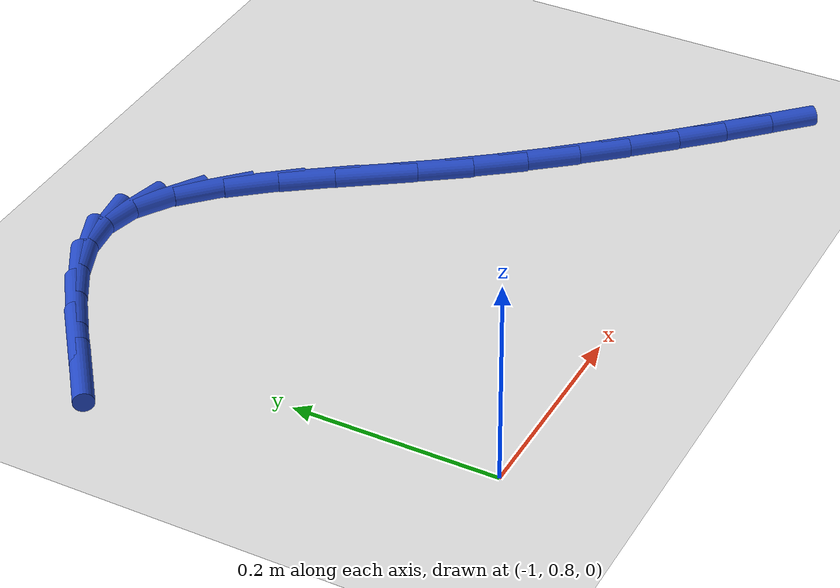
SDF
<sdf version="1.6">
 <world name="default">
  <model name="ground_plane">
   <static>1</static>
   <link name="link">
    <collision name="collision">
     <geometry><plane><normal>0 0 1</normal><size>100 100</size></plane></geometry>
     <surface><friction><ode><mu>100</mu><mu2>50</mu2></ode></friction></surface>
    </collision>
    <visual name="visual">
     <cast_shadows>0</cast_shadows>
     <geometry><plane><normal>0 0 1</normal><size>100 100</size></plane></geometry>
     <material>
      <script><uri>file://media/materials/scripts/gazebo.material</uri><name>Gazebo/WhiteGlow</name></script>
     </material>
    </visual>
   </link>
  </model>
  <model name="line">
   <link name="link_20">
    <pose>-0.40143416023165135 0.7904790253872984 0.01 0 1.57 -0.7918048773027135</pose>
    <collision name="collision">
     <geometry><cylinder><radius>0.01</radius><length>0.08</length></cylinder></geometry>
    </collision>
    <visual name="visual">
     <material>
      <script><name>Gazebo/Blue</name><uri>file://media/materials/scripts/gazebo.material</uri></script>
     </material>
     <geometry><cylinder><radius>0.01</radius><length>0.08</length></cylinder></geometry>
    </visual>
   </link>
   <link name="link_21">
    <pose>-0.4351158887530221 0.8245951211150587 0.01 0 1.57 -0.8018211122325916</pose>
    <collision name="collision">
     <geometry><cylinder><radius>0.01</radius><length>0.08</length></cylinder></geometry>
    </collision>
    <visual name="visual">
     <material>
      <script><name>Gazebo/Blue</name><uri>file://media/materials/scripts/gazebo.material</uri></script>
     </material>
     <geometry><cylinder><radius>0.01</radius><length>0.08</length></cylinder></geometry>
    </visual>
   </link>
   <link name="link_22">
    <pose>-0.46897555789436235 0.8595856146228088 0.01 0 1.57 -0.8169596382863726</pose>
    <collision name="collision">
     <geometry><cylinder><radius>0.01</radius><length>0.08</length></cylinder></geometry>
    </collision>
    <visual name="visual">
     <material>
      <script><name>Gazebo/Blue</name><uri>file://media/materials/scripts/gazebo.material</uri></script>
     </material>
     <geometry><cylinder><radius>0.01</radius><length>0.08</length></cylinder></geometry>
    </visual>
   </link>
   <link name="link_23">
    <pose>-0.5028500998125415 0.8956688609498233 0.01 0 1.57 -0.8369269062319549</pose>
    <collision name="collision">
     <geometry><cylinder><radius>0.01</radius><length>0.08</length></cylinder></geometry>
    </collision>
    <visual name="visual">
     <material>
      <script><name>Gazebo/Blue</name><uri>file://media/materials/scripts/gazebo.material</uri></script>
     </material>
     <geometry><cylinder><radius>0.01</radius><length>0.08</length></cylinder></geometry>
    </visual>
   </link>
   <link name="link_24">
    <pose>-0.5365764466644282 0.9330632151353768 0.01 0 1.57 -0.861403209362557</pose>
    <collision name="collision">
     <geometry><cylinder><radius>0.01</radius><length>0.08</length></cylinder></geometry>
    </collision>
    <visual name="visual">
     <material>
      <script><name>Gazebo/Blue</name><uri>file://media/materials/scripts/gazebo.material</uri></script>
     </material>
     <geometry><cylinder><radius>0.01</radius><length>0.08</length></cylinder></geometry>
    </visual>
   </link>
   <link name="link_25">
    <pose>-0.5699915306068915 0.9719870322187436 0.01 0 1.57 -0.8900360650598279</pose>
    <collision name="collision">
     <geometry><cylinder><radius>0.01</radius><length>0.08</length></cylinder></geometry>
    </collision>
    <visual name="visual">
     <material>
      <script><name>Gazebo/Blue</name><uri>file://media/materials/scripts/gazebo.material</uri></script>
     </material>
     <geometry><cylinder><radius>0.01</radius><length>0.08</length></cylinder></geometry>
    </visual>
   </link>
   <link name="link_26">
    <pose>-0.6029322837968005 1.0126586672391982 0.01 0 1.57 -0.9224347609188671</pose>
    <collision name="collision">
     <geometry><cylinder><radius>0.01</radius><length>0.08</length></cylinder></geometry>
    </collision>
    <visual name="visual">
     <material>
      <script><name>Gazebo/Blue</name><uri>file://media/materials/scripts/gazebo.material</uri></script>
     </material>
     <geometry><cylinder><radius>0.01</radius><length>0.08</length></cylinder></geometry>
    </visual>
   </link>
   <link name="link_27">
    <pose>-0.6352356383910243 1.0552964752360157 0.01 0 1.57 -0.9564537085518491</pose>
    <collision name="collision">
     <geometry><cylinder><radius>0.01</radius><length>0.08</length></cylinder></geometry>
    </collision>
    <visual name="visual">
     <material>
      <script><name>Gazebo/Blue</name><uri>file://media/materials/scripts/gazebo.material</uri></script>
     </material>
     <geometry><cylinder><radius>0.01</radius><length>0.08</length></cylinder></geometry>
    </visual>
   </link>
   <link name="link_28">
    <pose>-0.6667643967040539 1.0999925992749575 0.01 0 1.57 -0.9706035646979716</pose>
    <collision name="collision">
     <geometry><cylinder><radius>0.01</radius><length>0.08</length></cylinder></geometry>
    </collision>
    <visual name="visual">
     <material>
      <script><name>Gazebo/Blue</name><uri>file://media/materials/scripts/gazebo.material</uri></script>
     </material>
     <geometry><cylinder><radius>0.01</radius><length>0.08</length></cylinder></geometry>
    </visual>
   </link>
   <link name="link_29">
    <pose>-0.6977145591325691 1.1452136187844102 0.01 0 1.57 -0.9501591068908417</pose>
    <collision name="collision">
     <geometry><cylinder><radius>0.01</radius><length>0.08</length></cylinder></geometry>
    </collision>
    <visual name="visual">
     <material>
      <script><name>Gazebo/Blue</name><uri>file://media/materials/scripts/gazebo.material</uri></script>
     </material>
     <geometry><cylinder><radius>0.01</radius><length>0.08</length></cylinder></geometry>
    </visual>
   </link>
   <link name="link_30">
    <pose>-0.728513581017587 1.1882969207954595 0.01 0 1.57 -0.8885804075570896</pose>
    <collision name="collision">
     <geometry><cylinder><radius>0.01</radius><length>0.08</length></cylinder></geometry>
    </collision>
    <visual name="visual">
     <material>
      <script><name>Gazebo/Blue</name><uri>file://media/materials/scripts/gazebo.material</uri></script>
     </material>
     <geometry><cylinder><radius>0.01</radius><length>0.08</length></cylinder></geometry>
    </visual>
   </link>
   <link name="link_31">
    <pose>-0.7595935886170481 1.2265571044748194 0.01 0 1.57 -0.7687483526286377</pose>
    <collision name="collision">
     <geometry><cylinder><radius>0.01</radius><length>0.08</length></cylinder></geometry>
    </collision>
    <visual name="visual">
     <material>
      <script><name>Gazebo/Blue</name><uri>file://media/materials/scripts/gazebo.material</uri></script>
     </material>
     <geometry><cylinder><radius>0.01</radius><length>0.08</length></cylinder></geometry>
    </visual>
   </link>
   <link name="link_32">
    <pose>-0.7913867081888931 1.2573087689892033 0.01 0 1.57 -0.5579718634683034</pose>
    <collision name="collision">
     <geometry><cylinder><radius>0.01</radius><length>0.08</length></cylinder></geometry>
    </collision>
    <visual name="visual">
     <material>
      <script><name>Gazebo/Blue</name><uri>file://media/materials/scripts/gazebo.material</uri></script>
     </material>
     <geometry><cylinder><radius>0.01</radius><length>0.08</length></cylinder></geometry>
    </visual>
   </link>
   <link name="link_33">
    <pose>-0.8243250659910629 1.277866513505326 0.01 0 1.57 -0.22212326100522212</pose>
    <collision name="collision">
     <geometry><cylinder><radius>0.01</radius><length>0.08</length></cylinder></geometry>
    </collision>
    <visual name="visual">
     <material>
      <script><name>Gazebo/Blue</name><uri>file://media/materials/scripts/gazebo.material</uri></script>
     </material>
     <geometry><cylinder><radius>0.01</radius><length>0.08</length></cylinder></geometry>
    </visual>
   </link>
   <link name="link_34">
    <pose>-0.8588290491676992 1.2856592353440464 0.01 0 1.57 0.13807156750440358</pose>
    <collision name="collision">
     <geometry><cylinder><radius>0.01</radius><length>0.08</length></cylinder></geometry>
    </collision>
    <visual name="visual">
     <material>
      <script><name>Gazebo/Blue</name><uri>file://media/materials/scripts/gazebo.material</uri></script>
     </material>
     <geometry><cylinder><radius>0.01</radius><length>0.08</length></cylinder></geometry>
    </visual>
   </link>
   <link name="link_35">
    <pose>-0.8950613847110209 1.280624545879579 0.01 0 1.57 0.3880358079131005</pose>
    <collision name="collision">
     <geometry><cylinder><radius>0.01</radius><length>0.08</length></cylinder></geometry>
    </collision>
    <visual name="visual">
     <material>
      <script><name>Gazebo/Blue</name><uri>file://media/materials/scripts/gazebo.material</uri></script>
     </material>
     <geometry><cylinder><radius>0.01</radius><length>0.08</length></cylinder></geometry>
    </visual>
   </link>
   <link name="link_36">
    <pose>-0.9329338138076455 1.2651437856115377 0.01 0 1.57 0.5366027221303381</pose>
    <collision name="collision">
     <geometry><cylinder><radius>0.01</radius><length>0.08</length></cylinder></geometry>
    </collision>
    <visual name="visual">
     <material>
      <script><name>Gazebo/Blue</name><uri>file://media/materials/scripts/gazebo.material</uri></script>
     </material>
     <geometry><cylinder><radius>0.01</radius><length>0.08</length></cylinder></geometry>
    </visual>
   </link>
   <link name="link_37">
    <pose>-0.9723476736878953 1.2416995934016188 0.01 0 1.57 0.6160503631779193</pose>
    <collision name="collision">
     <geometry><cylinder><radius>0.01</radius><length>0.08</length></cylinder></geometry>
    </collision>
    <visual name="visual">
     <material>
      <script><name>Gazebo/Blue</name><uri>file://media/materials/scripts/gazebo.material</uri></script>
     </material>
     <geometry><cylinder><radius>0.01</radius><length>0.08</length></cylinder></geometry>
    </visual>
   </link>
   <link name="link_38">
    <pose>-1.013204301582094 1.2127746081115207 0.01 0 1.57 0.647622296973</pose>
    <collision name="collision">
     <geometry><cylinder><radius>0.01</radius><length>0.08</length></cylinder></geometry>
    </collision>
    <visual name="visual">
     <material>
      <script><name>Gazebo/Blue</name><uri>file://media/materials/scripts/gazebo.material</uri></script>
     </material>
     <geometry><cylinder><radius>0.01</radius><length>0.08</length></cylinder></geometry>
    </visual>
   </link>
   <link name="link_39">
    <pose>-1.0554050347205641 1.1808514686029408 0.01 0 1.57 0.6413472724299429</pose>
    <collision name="collision">
     <geometry><cylinder><radius>0.01</radius><length>0.08</length></cylinder></geometry>
    </collision>
    <visual name="visual">
     <material>
      <script><name>Gazebo/Blue</name><uri>file://media/materials/scripts/gazebo.material</uri></script>
     </material>
     <geometry><cylinder><radius>0.01</radius><length>0.08</length></cylinder></geometry>
    </visual>
   </link>
  </model>
 </world>
</sdf>
